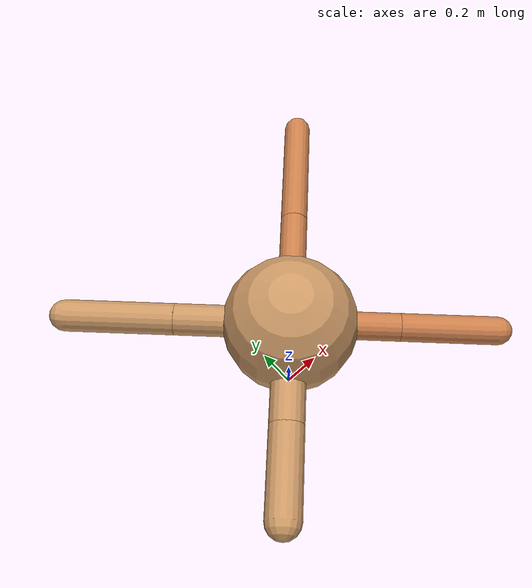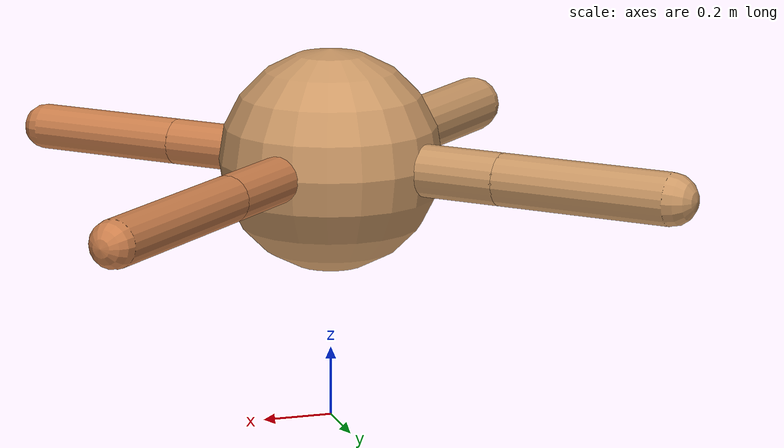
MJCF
<?xml version="1.0" ?>
<mujoco model="ant">

	<compiler angle="degree" coordinate="local" inertiafromgeom="true"/>

	<option integrator="RK4" timestep="0.01"/>

	<custom>

		<numeric data="0.0 0.0 0.55 1.0 0.0 0.0 0.0 0.0 1.0 0.0 -1.0 0.0 -1.0 0.0 1.0" name="init_qpos"/>

	</custom>

	<default>

		<joint armature="1" damping="1" limited="true"/>

		<geom conaffinity="0" condim="3" density="5.0" friction="1.5 0.1 0.1" margin="0.01" rgba="0.8 0.6 0.4 1"/>

	</default>

	<worldbody>

		<body name="torso" pos="0 0 0.75">

			<geom name="torso_geom" pos="0 0 0" size="0.3167708269776512" type="sphere"/>

			<!--joint armature="0" damping="0" limited="false" margin="0.01" name="root" pos="0 0 0" type="free"/-->

			<body name="front_left_leg" pos="0 0 0">

				<geom fromto="0 0 0 0.2 0.2 0" name="aux_1_geom" size="0.06599595517002477" type="capsule" rgba=".8 .5 .3 1"/>

				<body name="aux_1" pos="0.2 0.2 0">

					<joint axis="0 0 1" name="hip_1" pos="0.0 0.0 0.0" range="-40 40" type="hinge"/>

					<geom fromto="0 0 0 0.20276872085446795 0.20276872085446795 0" name="left_leg_geom" size="0.06599595517002477" type="capsule" rgba=".8 .5 .3 1"/>

					<body pos="0.20276872085446795 0.20276872085446795 0" name="front_left_foot">

						<joint axis="-1 1 0" name="ankle_1" pos="0.0 0.0 0.0" range="30 100" type="hinge"/>

						<geom fromto="0 0 0 0.4055374417089359 0.4055374417089359 0" name="left_ankle_geom" size="0.06599595517002477" type="capsule" rgba=".8 .5 .3 1"/>

					</body>

				</body>

			</body>

			<body name="front_right_leg" pos="0 0 0">

				<geom fromto="0 0 0 -0.2 0.2 0" name="aux_2_geom" size="0.07428259708709725" type="capsule"/>

				<body name="aux_2" pos="-0.2 0.2 0">

					<joint axis="0 0 1" name="hip_2" pos="0.0 0.0 0.0" range="-40 40" type="hinge"/>

					<geom fromto="0 0 0 -0.18012802418873 0.18012802418873 0" name="right_leg_geom" size="0.07428259708709725" type="capsule"/>

					<body pos="-0.18012802418873 0.18012802418873 0" name="front_right_foot">

						<joint axis="1 1 0" name="ankle_2" pos="0.0 0.0 0.0" range="-100 -30" type="hinge"/>

						<geom fromto="0 0 0 -0.36025604837746 0.36025604837746 0" name="right_ankle_geom" size="0.07428259708709725" type="capsule"/>

					</body>

				</body>

			</body>

			<body name="left_back_leg" pos="0 0 0">

				<geom fromto="0 0 0 -0.2 -0.2 0" name="aux_3_geom" size="0.08115115401523276" type="capsule"/>

				<body name="aux_3" pos="-0.2 -0.2 0">

					<joint axis="0 0 1" name="hip_3" pos="0.0 0.0 0.0" range="-40 40" type="hinge"/>

					<geom fromto="0 0 0 -0.14350735232575268 -0.14350735232575268 0" name="back_leg_geom" size="0.08115115401523276" type="capsule"/>

					<body pos="-0.14350735232575268 -0.14350735232575268 0" name="left_back_foot">

						<joint axis="-1 1 0" name="ankle_3" pos="0.0 0.0 0.0" range="-100 -30" type="hinge"/>

						<geom fromto="0 0 0 -0.28701470465150536 -0.28701470465150536 0" name="third_ankle_geom" size="0.08115115401523276" type="capsule"/>

					</body>

				</body>

			</body>

			<body name="right_back_leg" pos="0 0 0">

				<geom fromto="0 0 0 0.2 -0.2 0" name="aux_4_geom" size="0.06554598539101161" type="capsule" rgba=".8 .5 .3 1"/>

				<body name="aux_4" pos="0.2 -0.2 0">

					<joint axis="0 0 1" name="hip_4" pos="0.0 0.0 0.0" range="-40 40" type="hinge"/>

					<geom fromto="0 0 0 0.1584598407181225 -0.1584598407181225 0" name="rightback_leg_geom" size="0.06554598539101161" type="capsule" rgba=".8 .5 .3 1"/>

					<body pos="0.1584598407181225 -0.1584598407181225 0" name="right_back_foot">

						<joint axis="1 1 0" name="ankle_4" pos="0.0 0.0 0.0" range="30 100" type="hinge"/>

						<geom fromto="0 0 0 0.316919681436245 -0.316919681436245 0" name="fourth_ankle_geom" size="0.06554598539101161" type="capsule" rgba=".8 .5 .3 1"/>

					</body>

				</body>

			</body>

		</body>

	</worldbody>

	<actuator>

		<motor ctrllimited="true" ctrlrange="-1.0 1.0" joint="hip_4" gear="150"/>

		<motor ctrllimited="true" ctrlrange="-1.0 1.0" joint="ankle_4" gear="150"/>

		<motor ctrllimited="true" ctrlrange="-1.0 1.0" joint="hip_1" gear="150"/>

		<motor ctrllimited="true" ctrlrange="-1.0 1.0" joint="ankle_1" gear="150"/>

		<motor ctrllimited="true" ctrlrange="-1.0 1.0" joint="hip_2" gear="150"/>

		<motor ctrllimited="true" ctrlrange="-1.0 1.0" joint="ankle_2" gear="150"/>

		<motor ctrllimited="true" ctrlrange="-1.0 1.0" joint="hip_3" gear="150"/>

		<motor ctrllimited="true" ctrlrange="-1.0 1.0" joint="ankle_3" gear="150"/>

	</actuator>

</mujoco>
